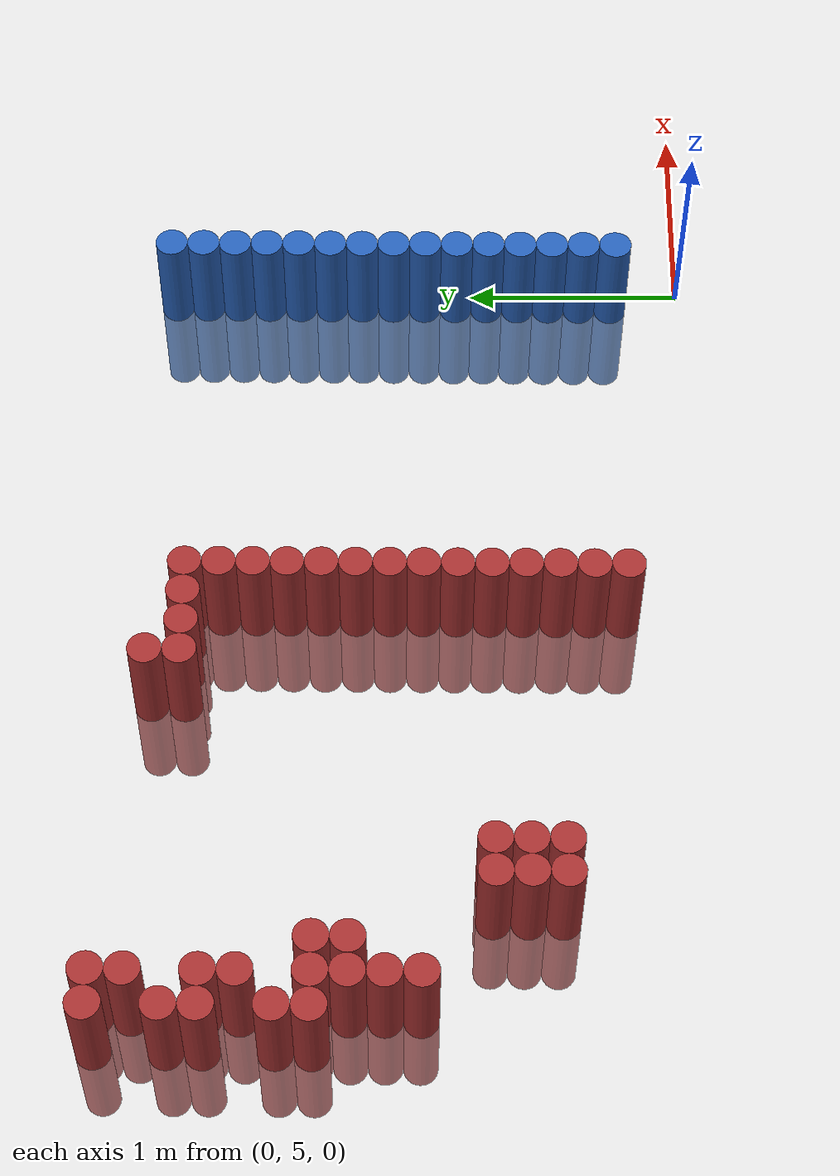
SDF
<sdf version="1.6">
 <world name="default">
  <model name="ground_plane">
   <static>1</static>
   <link name="link">
    <collision name="collision">
     <geometry><plane><normal>0 0 1</normal><size>100 100</size></plane></geometry>
     <surface><friction><ode><mu>100</mu><mu2>50</mu2></ode></friction></surface>
    </collision>
    <visual name="visual">
     <cast_shadows>0</cast_shadows>
     <geometry><plane><normal>0 0 1</normal><size>100 100</size></plane></geometry>
     <material>
      <script><uri>file://media/materials/scripts/gazebo.material</uri><name>Gazebo/Grey</name></script>
     </material>
    </visual>
   </link>
  </model>
  <model name="unit_cylinder_259">
   <static>1</static>
   <pose>-3.975000 6.675000 0.000000 0.000000 0.000000 0.000000</pose>
   <link name="link">
    <inertial>
     <mass>1</mass>
     <inertia><ixx>0.145833</ixx><ixy>0</ixy><ixz>0</ixz><iyy>0.145833</iyy><iyz>0</iyz><izz>0.125</izz></inertia>
    </inertial>
    <collision name="collision">
     <geometry><cylinder><radius>0.075000</radius><length>1</length></cylinder></geometry>
    </collision>
    <visual name="visual">
     <geometry><cylinder><radius>0.075000</radius><length>1</length></cylinder></geometry>
     <material>
      <ambient>0.648000 0.192000 0.192000 1</ambient>
      <diffuse>0.648000 0.192000 0.192000 1</diffuse>
     </material>
     <material>
      <script><name>Gazebo/Grey</name><uri>file://media/materials/scripts/gazebo.material</uri></script>
     </material>
    </visual>
   </link>
  </model>
  <model name="unit_cylinder_260">
   <static>1</static>
   <pose>-3.975000 6.825000 0.000000 0.000000 0.000000 0.000000</pose>
   <link name="link">
    <inertial>
     <mass>1</mass>
     <inertia><ixx>0.145833</ixx><ixy>0</ixy><ixz>0</ixz><iyy>0.145833</iyy><iyz>0</iyz><izz>0.125</izz></inertia>
    </inertial>
    <collision name="collision">
     <geometry><cylinder><radius>0.075000</radius><length>1</length></cylinder></geometry>
    </collision>
    <visual name="visual">
     <geometry><cylinder><radius>0.075000</radius><length>1</length></cylinder></geometry>
     <material>
      <ambient>0.648000 0.192000 0.192000 1</ambient>
      <diffuse>0.648000 0.192000 0.192000 1</diffuse>
     </material>
     <material>
      <script><name>Gazebo/Grey</name><uri>file://media/materials/scripts/gazebo.material</uri></script>
     </material>
    </visual>
   </link>
  </model>
  <model name="unit_cylinder_261">
   <static>1</static>
   <pose>-3.975000 7.125000 0.000000 0.000000 0.000000 0.000000</pose>
   <link name="link">
    <inertial>
     <mass>1</mass>
     <inertia><ixx>0.145833</ixx><ixy>0</ixy><ixz>0</ixz><iyy>0.145833</iyy><iyz>0</iyz><izz>0.125</izz></inertia>
    </inertial>
    <collision name="collision">
     <geometry><cylinder><radius>0.075000</radius><length>1</length></cylinder></geometry>
    </collision>
    <visual name="visual">
     <geometry><cylinder><radius>0.075000</radius><length>1</length></cylinder></geometry>
     <material>
      <ambient>0.648000 0.192000 0.192000 1</ambient>
      <diffuse>0.648000 0.192000 0.192000 1</diffuse>
     </material>
     <material>
      <script><name>Gazebo/Grey</name><uri>file://media/materials/scripts/gazebo.material</uri></script>
     </material>
    </visual>
   </link>
  </model>
  <model name="unit_cylinder_262">
   <static>1</static>
   <pose>-3.975000 7.275000 0.000000 0.000000 0.000000 0.000000</pose>
   <link name="link">
    <inertial>
     <mass>1</mass>
     <inertia><ixx>0.145833</ixx><ixy>0</ixy><ixz>0</ixz><iyy>0.145833</iyy><iyz>0</iyz><izz>0.125</izz></inertia>
    </inertial>
    <collision name="collision">
     <geometry><cylinder><radius>0.075000</radius><length>1</length></cylinder></geometry>
    </collision>
    <visual name="visual">
     <geometry><cylinder><radius>0.075000</radius><length>1</length></cylinder></geometry>
     <material>
      <ambient>0.648000 0.192000 0.192000 1</ambient>
      <diffuse>0.648000 0.192000 0.192000 1</diffuse>
     </material>
     <material>
      <script><name>Gazebo/Grey</name><uri>file://media/materials/scripts/gazebo.material</uri></script>
     </material>
    </visual>
   </link>
  </model>
  <model name="unit_cylinder_263">
   <static>1</static>
   <pose>-3.975000 7.575000 0.000000 0.000000 0.000000 0.000000</pose>
   <link name="link">
    <inertial>
     <mass>1</mass>
     <inertia><ixx>0.145833</ixx><ixy>0</ixy><ixz>0</ixz><iyy>0.145833</iyy><iyz>0</iyz><izz>0.125</izz></inertia>
    </inertial>
    <collision name="collision">
     <geometry><cylinder><radius>0.075000</radius><length>1</length></cylinder></geometry>
    </collision>
    <visual name="visual">
     <geometry><cylinder><radius>0.075000</radius><length>1</length></cylinder></geometry>
     <material>
      <ambient>0.648000 0.192000 0.192000 1</ambient>
      <diffuse>0.648000 0.192000 0.192000 1</diffuse>
     </material>
     <material>
      <script><name>Gazebo/Grey</name><uri>file://media/materials/scripts/gazebo.material</uri></script>
     </material>
    </visual>
   </link>
  </model>
  <model name="unit_cylinder_270">
   <static>1</static>
   <pose>-3.825000 6.225000 0.000000 0.000000 0.000000 0.000000</pose>
   <link name="link">
    <inertial>
     <mass>1</mass>
     <inertia><ixx>0.145833</ixx><ixy>0</ixy><ixz>0</ixz><iyy>0.145833</iyy><iyz>0</iyz><izz>0.125</izz></inertia>
    </inertial>
    <collision name="collision">
     <geometry><cylinder><radius>0.075000</radius><length>1</length></cylinder></geometry>
    </collision>
    <visual name="visual">
     <geometry><cylinder><radius>0.075000</radius><length>1</length></cylinder></geometry>
     <material>
      <ambient>0.648000 0.192000 0.192000 1</ambient>
      <diffuse>0.648000 0.192000 0.192000 1</diffuse>
     </material>
     <material>
      <script><name>Gazebo/Grey</name><uri>file://media/materials/scripts/gazebo.material</uri></script>
     </material>
    </visual>
   </link>
  </model>
  <model name="unit_cylinder_271">
   <static>1</static>
   <pose>-3.825000 6.375000 0.000000 0.000000 0.000000 0.000000</pose>
   <link name="link">
    <inertial>
     <mass>1</mass>
     <inertia><ixx>0.145833</ixx><ixy>0</ixy><ixz>0</ixz><iyy>0.145833</iyy><iyz>0</iyz><izz>0.125</izz></inertia>
    </inertial>
    <collision name="collision">
     <geometry><cylinder><radius>0.075000</radius><length>1</length></cylinder></geometry>
    </collision>
    <visual name="visual">
     <geometry><cylinder><radius>0.075000</radius><length>1</length></cylinder></geometry>
     <material>
      <ambient>0.648000 0.192000 0.192000 1</ambient>
      <diffuse>0.648000 0.192000 0.192000 1</diffuse>
     </material>
     <material>
      <script><name>Gazebo/Grey</name><uri>file://media/materials/scripts/gazebo.material</uri></script>
     </material>
    </visual>
   </link>
  </model>
  <model name="unit_cylinder_272">
   <static>1</static>
   <pose>-3.825000 6.525000 0.000000 0.000000 0.000000 0.000000</pose>
   <link name="link">
    <inertial>
     <mass>1</mass>
     <inertia><ixx>0.145833</ixx><ixy>0</ixy><ixz>0</ixz><iyy>0.145833</iyy><iyz>0</iyz><izz>0.125</izz></inertia>
    </inertial>
    <collision name="collision">
     <geometry><cylinder><radius>0.075000</radius><length>1</length></cylinder></geometry>
    </collision>
    <visual name="visual">
     <geometry><cylinder><radius>0.075000</radius><length>1</length></cylinder></geometry>
     <material>
      <ambient>0.648000 0.192000 0.192000 1</ambient>
      <diffuse>0.648000 0.192000 0.192000 1</diffuse>
     </material>
     <material>
      <script><name>Gazebo/Grey</name><uri>file://media/materials/scripts/gazebo.material</uri></script>
     </material>
    </visual>
   </link>
  </model>
  <model name="unit_cylinder_273">
   <static>1</static>
   <pose>-3.825000 6.675000 0.000000 0.000000 0.000000 0.000000</pose>
   <link name="link">
    <inertial>
     <mass>1</mass>
     <inertia><ixx>0.145833</ixx><ixy>0</ixy><ixz>0</ixz><iyy>0.145833</iyy><iyz>0</iyz><izz>0.125</izz></inertia>
    </inertial>
    <collision name="collision">
     <geometry><cylinder><radius>0.075000</radius><length>1</length></cylinder></geometry>
    </collision>
    <visual name="visual">
     <geometry><cylinder><radius>0.075000</radius><length>1</length></cylinder></geometry>
     <material>
      <ambient>0.648000 0.192000 0.192000 1</ambient>
      <diffuse>0.648000 0.192000 0.192000 1</diffuse>
     </material>
     <material>
      <script><name>Gazebo/Grey</name><uri>file://media/materials/scripts/gazebo.material</uri></script>
     </material>
    </visual>
   </link>
  </model>
  <model name="unit_cylinder_274">
   <static>1</static>
   <pose>-3.825000 6.975000 0.000000 0.000000 0.000000 0.000000</pose>
   <link name="link">
    <inertial>
     <mass>1</mass>
     <inertia><ixx>0.145833</ixx><ixy>0</ixy><ixz>0</ixz><iyy>0.145833</iyy><iyz>0</iyz><izz>0.125</izz></inertia>
    </inertial>
    <collision name="collision">
     <geometry><cylinder><radius>0.075000</radius><length>1</length></cylinder></geometry>
    </collision>
    <visual name="visual">
     <geometry><cylinder><radius>0.075000</radius><length>1</length></cylinder></geometry>
     <material>
      <ambient>0.648000 0.192000 0.192000 1</ambient>
      <diffuse>0.648000 0.192000 0.192000 1</diffuse>
     </material>
     <material>
      <script><name>Gazebo/Grey</name><uri>file://media/materials/scripts/gazebo.material</uri></script>
     </material>
    </visual>
   </link>
  </model>
  <model name="unit_cylinder_275">
   <static>1</static>
   <pose>-3.825000 7.125000 0.000000 0.000000 0.000000 0.000000</pose>
   <link name="link">
    <inertial>
     <mass>1</mass>
     <inertia><ixx>0.145833</ixx><ixy>0</ixy><ixz>0</ixz><iyy>0.145833</iyy><iyz>0</iyz><izz>0.125</izz></inertia>
    </inertial>
    <collision name="collision">
     <geometry><cylinder><radius>0.075000</radius><length>1</length></cylinder></geometry>
    </collision>
    <visual name="visual">
     <geometry><cylinder><radius>0.075000</radius><length>1</length></cylinder></geometry>
     <material>
      <ambient>0.648000 0.192000 0.192000 1</ambient>
      <diffuse>0.648000 0.192000 0.192000 1</diffuse>
     </material>
     <material>
      <script><name>Gazebo/Grey</name><uri>file://media/materials/scripts/gazebo.material</uri></script>
     </material>
    </visual>
   </link>
  </model>
  <model name="unit_cylinder_276">
   <static>1</static>
   <pose>-3.825000 7.425000 0.000000 0.000000 0.000000 0.000000</pose>
   <link name="link">
    <inertial>
     <mass>1</mass>
     <inertia><ixx>0.145833</ixx><ixy>0</ixy><ixz>0</ixz><iyy>0.145833</iyy><iyz>0</iyz><izz>0.125</izz></inertia>
    </inertial>
    <collision name="collision">
     <geometry><cylinder><radius>0.075000</radius><length>1</length></cylinder></geometry>
    </collision>
    <visual name="visual">
     <geometry><cylinder><radius>0.075000</radius><length>1</length></cylinder></geometry>
     <material>
      <ambient>0.648000 0.192000 0.192000 1</ambient>
      <diffuse>0.648000 0.192000 0.192000 1</diffuse>
     </material>
     <material>
      <script><name>Gazebo/Grey</name><uri>file://media/materials/scripts/gazebo.material</uri></script>
     </material>
    </visual>
   </link>
  </model>
  <model name="unit_cylinder_277">
   <static>1</static>
   <pose>-3.825000 7.575000 0.000000 0.000000 0.000000 0.000000</pose>
   <link name="link">
    <inertial>
     <mass>1</mass>
     <inertia><ixx>0.145833</ixx><ixy>0</ixy><ixz>0</ixz><iyy>0.145833</iyy><iyz>0</iyz><izz>0.125</izz></inertia>
    </inertial>
    <collision name="collision">
     <geometry><cylinder><radius>0.075000</radius><length>1</length></cylinder></geometry>
    </collision>
    <visual name="visual">
     <geometry><cylinder><radius>0.075000</radius><length>1</length></cylinder></geometry>
     <material>
      <ambient>0.648000 0.192000 0.192000 1</ambient>
      <diffuse>0.648000 0.192000 0.192000 1</diffuse>
     </material>
     <material>
      <script><name>Gazebo/Grey</name><uri>file://media/materials/scripts/gazebo.material</uri></script>
     </material>
    </visual>
   </link>
  </model>
  <model name="unit_cylinder_281">
   <static>1</static>
   <pose>-3.675000 6.525000 0.000000 0.000000 0.000000 0.000000</pose>
   <link name="link">
    <inertial>
     <mass>1</mass>
     <inertia><ixx>0.145833</ixx><ixy>0</ixy><ixz>0</ixz><iyy>0.145833</iyy><iyz>0</iyz><izz>0.125</izz></inertia>
    </inertial>
    <collision name="collision">
     <geometry><cylinder><radius>0.075000</radius><length>1</length></cylinder></geometry>
    </collision>
    <visual name="visual">
     <geometry><cylinder><radius>0.075000</radius><length>1</length></cylinder></geometry>
     <material>
      <ambient>0.648000 0.192000 0.192000 1</ambient>
      <diffuse>0.648000 0.192000 0.192000 1</diffuse>
     </material>
     <material>
      <script><name>Gazebo/Grey</name><uri>file://media/materials/scripts/gazebo.material</uri></script>
     </material>
    </visual>
   </link>
  </model>
  <model name="unit_cylinder_282">
   <static>1</static>
   <pose>-3.675000 6.675000 0.000000 0.000000 0.000000 0.000000</pose>
   <link name="link">
    <inertial>
     <mass>1</mass>
     <inertia><ixx>0.145833</ixx><ixy>0</ixy><ixz>0</ixz><iyy>0.145833</iyy><iyz>0</iyz><izz>0.125</izz></inertia>
    </inertial>
    <collision name="collision">
     <geometry><cylinder><radius>0.075000</radius><length>1</length></cylinder></geometry>
    </collision>
    <visual name="visual">
     <geometry><cylinder><radius>0.075000</radius><length>1</length></cylinder></geometry>
     <material>
      <ambient>0.648000 0.192000 0.192000 1</ambient>
      <diffuse>0.648000 0.192000 0.192000 1</diffuse>
     </material>
     <material>
      <script><name>Gazebo/Grey</name><uri>file://media/materials/scripts/gazebo.material</uri></script>
     </material>
    </visual>
   </link>
  </model>
  <model name="unit_cylinder_285">
   <static>1</static>
   <pose>-3.375000 5.625000 0.000000 0.000000 0.000000 0.000000</pose>
   <link name="link">
    <inertial>
     <mass>1</mass>
     <inertia><ixx>0.145833</ixx><ixy>0</ixy><ixz>0</ixz><iyy>0.145833</iyy><iyz>0</iyz><izz>0.125</izz></inertia>
    </inertial>
    <collision name="collision">
     <geometry><cylinder><radius>0.075000</radius><length>1</length></cylinder></geometry>
    </collision>
    <visual name="visual">
     <geometry><cylinder><radius>0.075000</radius><length>1</length></cylinder></geometry>
     <material>
      <ambient>0.648000 0.192000 0.192000 1</ambient>
      <diffuse>0.648000 0.192000 0.192000 1</diffuse>
     </material>
     <material>
      <script><name>Gazebo/Grey</name><uri>file://media/materials/scripts/gazebo.material</uri></script>
     </material>
    </visual>
   </link>
  </model>
  <model name="unit_cylinder_286">
   <static>1</static>
   <pose>-3.375000 5.775000 0.000000 0.000000 0.000000 0.000000</pose>
   <link name="link">
    <inertial>
     <mass>1</mass>
     <inertia><ixx>0.145833</ixx><ixy>0</ixy><ixz>0</ixz><iyy>0.145833</iyy><iyz>0</iyz><izz>0.125</izz></inertia>
    </inertial>
    <collision name="collision">
     <geometry><cylinder><radius>0.075000</radius><length>1</length></cylinder></geometry>
    </collision>
    <visual name="visual">
     <geometry><cylinder><radius>0.075000</radius><length>1</length></cylinder></geometry>
     <material>
      <ambient>0.648000 0.192000 0.192000 1</ambient>
      <diffuse>0.648000 0.192000 0.192000 1</diffuse>
     </material>
     <material>
      <script><name>Gazebo/Grey</name><uri>file://media/materials/scripts/gazebo.material</uri></script>
     </material>
    </visual>
   </link>
  </model>
  <model name="unit_cylinder_287">
   <static>1</static>
   <pose>-3.375000 5.925000 0.000000 0.000000 0.000000 0.000000</pose>
   <link name="link">
    <inertial>
     <mass>1</mass>
     <inertia><ixx>0.145833</ixx><ixy>0</ixy><ixz>0</ixz><iyy>0.145833</iyy><iyz>0</iyz><izz>0.125</izz></inertia>
    </inertial>
    <collision name="collision">
     <geometry><cylinder><radius>0.075000</radius><length>1</length></cylinder></geometry>
    </collision>
    <visual name="visual">
     <geometry><cylinder><radius>0.075000</radius><length>1</length></cylinder></geometry>
     <material>
      <ambient>0.648000 0.192000 0.192000 1</ambient>
      <diffuse>0.648000 0.192000 0.192000 1</diffuse>
     </material>
     <material>
      <script><name>Gazebo/Grey</name><uri>file://media/materials/scripts/gazebo.material</uri></script>
     </material>
    </visual>
   </link>
  </model>
  <model name="unit_cylinder_288">
   <static>1</static>
   <pose>-3.225000 5.625000 0.000000 0.000000 0.000000 0.000000</pose>
   <link name="link">
    <inertial>
     <mass>1</mass>
     <inertia><ixx>0.145833</ixx><ixy>0</ixy><ixz>0</ixz><iyy>0.145833</iyy><iyz>0</iyz><izz>0.125</izz></inertia>
    </inertial>
    <collision name="collision">
     <geometry><cylinder><radius>0.075000</radius><length>1</length></cylinder></geometry>
    </collision>
    <visual name="visual">
     <geometry><cylinder><radius>0.075000</radius><length>1</length></cylinder></geometry>
     <material>
      <ambient>0.648000 0.192000 0.192000 1</ambient>
      <diffuse>0.648000 0.192000 0.192000 1</diffuse>
     </material>
     <material>
      <script><name>Gazebo/Grey</name><uri>file://media/materials/scripts/gazebo.material</uri></script>
     </material>
    </visual>
   </link>
  </model>
  <model name="unit_cylinder_289">
   <static>1</static>
   <pose>-3.225000 5.775000 0.000000 0.000000 0.000000 0.000000</pose>
   <link name="link">
    <inertial>
     <mass>1</mass>
     <inertia><ixx>0.145833</ixx><ixy>0</ixy><ixz>0</ixz><iyy>0.145833</iyy><iyz>0</iyz><izz>0.125</izz></inertia>
    </inertial>
    <collision name="collision">
     <geometry><cylinder><radius>0.075000</radius><length>1</length></cylinder></geometry>
    </collision>
    <visual name="visual">
     <geometry><cylinder><radius>0.075000</radius><length>1</length></cylinder></geometry>
     <material>
      <ambient>0.648000 0.192000 0.192000 1</ambient>
      <diffuse>0.648000 0.192000 0.192000 1</diffuse>
     </material>
     <material>
      <script><name>Gazebo/Grey</name><uri>file://media/materials/scripts/gazebo.material</uri></script>
     </material>
    </visual>
   </link>
  </model>
  <model name="unit_cylinder_290">
   <static>1</static>
   <pose>-3.225000 5.925000 0.000000 0.000000 0.000000 0.000000</pose>
   <link name="link">
    <inertial>
     <mass>1</mass>
     <inertia><ixx>0.145833</ixx><ixy>0</ixy><ixz>0</ixz><iyy>0.145833</iyy><iyz>0</iyz><izz>0.125</izz></inertia>
    </inertial>
    <collision name="collision">
     <geometry><cylinder><radius>0.075000</radius><length>1</length></cylinder></geometry>
    </collision>
    <visual name="visual">
     <geometry><cylinder><radius>0.075000</radius><length>1</length></cylinder></geometry>
     <material>
      <ambient>0.648000 0.192000 0.192000 1</ambient>
      <diffuse>0.648000 0.192000 0.192000 1</diffuse>
     </material>
     <material>
      <script><name>Gazebo/Grey</name><uri>file://media/materials/scripts/gazebo.material</uri></script>
     </material>
    </visual>
   </link>
  </model>
  <model name="unit_cylinder_295">
   <static>1</static>
   <pose>-2.325000 7.275000 0.000000 0.000000 0.000000 0.000000</pose>
   <link name="link">
    <inertial>
     <mass>1</mass>
     <inertia><ixx>0.145833</ixx><ixy>0</ixy><ixz>0</ixz><iyy>0.145833</iyy><iyz>0</iyz><izz>0.125</izz></inertia>
    </inertial>
    <collision name="collision">
     <geometry><cylinder><radius>0.075000</radius><length>1</length></cylinder></geometry>
    </collision>
    <visual name="visual">
     <geometry><cylinder><radius>0.075000</radius><length>1</length></cylinder></geometry>
     <material>
      <ambient>0.648000 0.192000 0.192000 1</ambient>
      <diffuse>0.648000 0.192000 0.192000 1</diffuse>
     </material>
     <material>
      <script><name>Gazebo/Grey</name><uri>file://media/materials/scripts/gazebo.material</uri></script>
     </material>
    </visual>
   </link>
  </model>
  <model name="unit_cylinder_296">
   <static>1</static>
   <pose>-2.325000 7.425000 0.000000 0.000000 0.000000 0.000000</pose>
   <link name="link">
    <inertial>
     <mass>1</mass>
     <inertia><ixx>0.145833</ixx><ixy>0</ixy><ixz>0</ixz><iyy>0.145833</iyy><iyz>0</iyz><izz>0.125</izz></inertia>
    </inertial>
    <collision name="collision">
     <geometry><cylinder><radius>0.075000</radius><length>1</length></cylinder></geometry>
    </collision>
    <visual name="visual">
     <geometry><cylinder><radius>0.075000</radius><length>1</length></cylinder></geometry>
     <material>
      <ambient>0.648000 0.192000 0.192000 1</ambient>
      <diffuse>0.648000 0.192000 0.192000 1</diffuse>
     </material>
     <material>
      <script><name>Gazebo/Grey</name><uri>file://media/materials/scripts/gazebo.material</uri></script>
     </material>
    </visual>
   </link>
  </model>
  <model name="unit_cylinder_309">
   <static>1</static>
   <pose>-2.175000 7.275000 0.000000 0.000000 0.000000 0.000000</pose>
   <link name="link">
    <inertial>
     <mass>1</mass>
     <inertia><ixx>0.145833</ixx><ixy>0</ixy><ixz>0</ixz><iyy>0.145833</iyy><iyz>0</iyz><izz>0.125</izz></inertia>
    </inertial>
    <collision name="collision">
     <geometry><cylinder><radius>0.075000</radius><length>1</length></cylinder></geometry>
    </collision>
    <visual name="visual">
     <geometry><cylinder><radius>0.075000</radius><length>1</length></cylinder></geometry>
     <material>
      <ambient>0.648000 0.192000 0.192000 1</ambient>
      <diffuse>0.648000 0.192000 0.192000 1</diffuse>
     </material>
     <material>
      <script><name>Gazebo/Grey</name><uri>file://media/materials/scripts/gazebo.material</uri></script>
     </material>
    </visual>
   </link>
  </model>
  <model name="unit_cylinder_311">
   <static>1</static>
   <pose>-2.025000 7.275000 0.000000 0.000000 0.000000 0.000000</pose>
   <link name="link">
    <inertial>
     <mass>1</mass>
     <inertia><ixx>0.145833</ixx><ixy>0</ixy><ixz>0</ixz><iyy>0.145833</iyy><iyz>0</iyz><izz>0.125</izz></inertia>
    </inertial>
    <collision name="collision">
     <geometry><cylinder><radius>0.075000</radius><length>1</length></cylinder></geometry>
    </collision>
    <visual name="visual">
     <geometry><cylinder><radius>0.075000</radius><length>1</length></cylinder></geometry>
     <material>
      <ambient>0.648000 0.192000 0.192000 1</ambient>
      <diffuse>0.648000 0.192000 0.192000 1</diffuse>
     </material>
     <material>
      <script><name>Gazebo/Grey</name><uri>file://media/materials/scripts/gazebo.material</uri></script>
     </material>
    </visual>
   </link>
  </model>
  <model name="unit_cylinder_314">
   <static>1</static>
   <pose>-1.875000 5.325000 0.000000 0.000000 0.000000 0.000000</pose>
   <link name="link">
    <inertial>
     <mass>1</mass>
     <inertia><ixx>0.145833</ixx><ixy>0</ixy><ixz>0</ixz><iyy>0.145833</iyy><iyz>0</iyz><izz>0.125</izz></inertia>
    </inertial>
    <collision name="collision">
     <geometry><cylinder><radius>0.075000</radius><length>1</length></cylinder></geometry>
    </collision>
    <visual name="visual">
     <geometry><cylinder><radius>0.075000</radius><length>1</length></cylinder></geometry>
     <material>
      <ambient>0.648000 0.192000 0.192000 1</ambient>
      <diffuse>0.648000 0.192000 0.192000 1</diffuse>
     </material>
     <material>
      <script><name>Gazebo/Grey</name><uri>file://media/materials/scripts/gazebo.material</uri></script>
     </material>
    </visual>
   </link>
  </model>
  <model name="unit_cylinder_315">
   <static>1</static>
   <pose>-1.875000 5.475000 0.000000 0.000000 0.000000 0.000000</pose>
   <link name="link">
    <inertial>
     <mass>1</mass>
     <inertia><ixx>0.145833</ixx><ixy>0</ixy><ixz>0</ixz><iyy>0.145833</iyy><iyz>0</iyz><izz>0.125</izz></inertia>
    </inertial>
    <collision name="collision">
     <geometry><cylinder><radius>0.075000</radius><length>1</length></cylinder></geometry>
    </collision>
    <visual name="visual">
     <geometry><cylinder><radius>0.075000</radius><length>1</length></cylinder></geometry>
     <material>
      <ambient>0.648000 0.192000 0.192000 1</ambient>
      <diffuse>0.648000 0.192000 0.192000 1</diffuse>
     </material>
     <material>
      <script><name>Gazebo/Grey</name><uri>file://media/materials/scripts/gazebo.material</uri></script>
     </material>
    </visual>
   </link>
  </model>
  <model name="unit_cylinder_316">
   <static>1</static>
   <pose>-1.875000 5.625000 0.000000 0.000000 0.000000 0.000000</pose>
   <link name="link">
    <inertial>
     <mass>1</mass>
     <inertia><ixx>0.145833</ixx><ixy>0</ixy><ixz>0</ixz><iyy>0.145833</iyy><iyz>0</iyz><izz>0.125</izz></inertia>
    </inertial>
    <collision name="collision">
     <geometry><cylinder><radius>0.075000</radius><length>1</length></cylinder></geometry>
    </collision>
    <visual name="visual">
     <geometry><cylinder><radius>0.075000</radius><length>1</length></cylinder></geometry>
     <material>
      <ambient>0.648000 0.192000 0.192000 1</ambient>
      <diffuse>0.648000 0.192000 0.192000 1</diffuse>
     </material>
     <material>
      <script><name>Gazebo/Grey</name><uri>file://media/materials/scripts/gazebo.material</uri></script>
     </material>
    </visual>
   </link>
  </model>
  <model name="unit_cylinder_317">
   <static>1</static>
   <pose>-1.875000 5.775000 0.000000 0.000000 0.000000 0.000000</pose>
   <link name="link">
    <inertial>
     <mass>1</mass>
     <inertia><ixx>0.145833</ixx><ixy>0</ixy><ixz>0</ixz><iyy>0.145833</iyy><iyz>0</iyz><izz>0.125</izz></inertia>
    </inertial>
    <collision name="collision">
     <geometry><cylinder><radius>0.075000</radius><length>1</length></cylinder></geometry>
    </collision>
    <visual name="visual">
     <geometry><cylinder><radius>0.075000</radius><length>1</length></cylinder></geometry>
     <material>
      <ambient>0.648000 0.192000 0.192000 1</ambient>
      <diffuse>0.648000 0.192000 0.192000 1</diffuse>
     </material>
     <material>
      <script><name>Gazebo/Grey</name><uri>file://media/materials/scripts/gazebo.material</uri></script>
     </material>
    </visual>
   </link>
  </model>
  <model name="unit_cylinder_318">
   <static>1</static>
   <pose>-1.875000 5.925000 0.000000 0.000000 0.000000 0.000000</pose>
   <link name="link">
    <inertial>
     <mass>1</mass>
     <inertia><ixx>0.145833</ixx><ixy>0</ixy><ixz>0</ixz><iyy>0.145833</iyy><iyz>0</iyz><izz>0.125</izz></inertia>
    </inertial>
    <collision name="collision">
     <geometry><cylinder><radius>0.075000</radius><length>1</length></cylinder></geometry>
    </collision>
    <visual name="visual">
     <geometry><cylinder><radius>0.075000</radius><length>1</length></cylinder></geometry>
     <material>
      <ambient>0.648000 0.192000 0.192000 1</ambient>
      <diffuse>0.648000 0.192000 0.192000 1</diffuse>
     </material>
     <material>
      <script><name>Gazebo/Grey</name><uri>file://media/materials/scripts/gazebo.material</uri></script>
     </material>
    </visual>
   </link>
  </model>
  <model name="unit_cylinder_319">
   <static>1</static>
   <pose>-1.875000 6.075000 0.000000 0.000000 0.000000 0.000000</pose>
   <link name="link">
    <inertial>
     <mass>1</mass>
     <inertia><ixx>0.145833</ixx><ixy>0</ixy><ixz>0</ixz><iyy>0.145833</iyy><iyz>0</iyz><izz>0.125</izz></inertia>
    </inertial>
    <collision name="collision">
     <geometry><cylinder><radius>0.075000</radius><length>1</length></cylinder></geometry>
    </collision>
    <visual name="visual">
     <geometry><cylinder><radius>0.075000</radius><length>1</length></cylinder></geometry>
     <material>
      <ambient>0.648000 0.192000 0.192000 1</ambient>
      <diffuse>0.648000 0.192000 0.192000 1</diffuse>
     </material>
     <material>
      <script><name>Gazebo/Grey</name><uri>file://media/materials/scripts/gazebo.material</uri></script>
     </material>
    </visual>
   </link>
  </model>
  <model name="unit_cylinder_320">
   <static>1</static>
   <pose>-1.875000 6.225000 0.000000 0.000000 0.000000 0.000000</pose>
   <link name="link">
    <inertial>
     <mass>1</mass>
     <inertia><ixx>0.145833</ixx><ixy>0</ixy><ixz>0</ixz><iyy>0.145833</iyy><iyz>0</iyz><izz>0.125</izz></inertia>
    </inertial>
    <collision name="collision">
     <geometry><cylinder><radius>0.075000</radius><length>1</length></cylinder></geometry>
    </collision>
    <visual name="visual">
     <geometry><cylinder><radius>0.075000</radius><length>1</length></cylinder></geometry>
     <material>
      <ambient>0.648000 0.192000 0.192000 1</ambient>
      <diffuse>0.648000 0.192000 0.192000 1</diffuse>
     </material>
     <material>
      <script><name>Gazebo/Grey</name><uri>file://media/materials/scripts/gazebo.material</uri></script>
     </material>
    </visual>
   </link>
  </model>
  <model name="unit_cylinder_321">
   <static>1</static>
   <pose>-1.875000 6.375000 0.000000 0.000000 0.000000 0.000000</pose>
   <link name="link">
    <inertial>
     <mass>1</mass>
     <inertia><ixx>0.145833</ixx><ixy>0</ixy><ixz>0</ixz><iyy>0.145833</iyy><iyz>0</iyz><izz>0.125</izz></inertia>
    </inertial>
    <collision name="collision">
     <geometry><cylinder><radius>0.075000</radius><length>1</length></cylinder></geometry>
    </collision>
    <visual name="visual">
     <geometry><cylinder><radius>0.075000</radius><length>1</length></cylinder></geometry>
     <material>
      <ambient>0.648000 0.192000 0.192000 1</ambient>
      <diffuse>0.648000 0.192000 0.192000 1</diffuse>
     </material>
     <material>
      <script><name>Gazebo/Grey</name><uri>file://media/materials/scripts/gazebo.material</uri></script>
     </material>
    </visual>
   </link>
  </model>
  <model name="unit_cylinder_322">
   <static>1</static>
   <pose>-1.875000 6.525000 0.000000 0.000000 0.000000 0.000000</pose>
   <link name="link">
    <inertial>
     <mass>1</mass>
     <inertia><ixx>0.145833</ixx><ixy>0</ixy><ixz>0</ixz><iyy>0.145833</iyy><iyz>0</iyz><izz>0.125</izz></inertia>
    </inertial>
    <collision name="collision">
     <geometry><cylinder><radius>0.075000</radius><length>1</length></cylinder></geometry>
    </collision>
    <visual name="visual">
     <geometry><cylinder><radius>0.075000</radius><length>1</length></cylinder></geometry>
     <material>
      <ambient>0.648000 0.192000 0.192000 1</ambient>
      <diffuse>0.648000 0.192000 0.192000 1</diffuse>
     </material>
     <material>
      <script><name>Gazebo/Grey</name><uri>file://media/materials/scripts/gazebo.material</uri></script>
     </material>
    </visual>
   </link>
  </model>
  <model name="unit_cylinder_323">
   <static>1</static>
   <pose>-1.875000 6.675000 0.000000 0.000000 0.000000 0.000000</pose>
   <link name="link">
    <inertial>
     <mass>1</mass>
     <inertia><ixx>0.145833</ixx><ixy>0</ixy><ixz>0</ixz><iyy>0.145833</iyy><iyz>0</iyz><izz>0.125</izz></inertia>
    </inertial>
    <collision name="collision">
     <geometry><cylinder><radius>0.075000</radius><length>1</length></cylinder></geometry>
    </collision>
    <visual name="visual">
     <geometry><cylinder><radius>0.075000</radius><length>1</length></cylinder></geometry>
     <material>
      <ambient>0.648000 0.192000 0.192000 1</ambient>
      <diffuse>0.648000 0.192000 0.192000 1</diffuse>
     </material>
     <material>
      <script><name>Gazebo/Grey</name><uri>file://media/materials/scripts/gazebo.material</uri></script>
     </material>
    </visual>
   </link>
  </model>
  <model name="unit_cylinder_324">
   <static>1</static>
   <pose>-1.875000 6.825000 0.000000 0.000000 0.000000 0.000000</pose>
   <link name="link">
    <inertial>
     <mass>1</mass>
     <inertia><ixx>0.145833</ixx><ixy>0</ixy><ixz>0</ixz><iyy>0.145833</iyy><iyz>0</iyz><izz>0.125</izz></inertia>
    </inertial>
    <collision name="collision">
     <geometry><cylinder><radius>0.075000</radius><length>1</length></cylinder></geometry>
    </collision>
    <visual name="visual">
     <geometry><cylinder><radius>0.075000</radius><length>1</length></cylinder></geometry>
     <material>
      <ambient>0.648000 0.192000 0.192000 1</ambient>
      <diffuse>0.648000 0.192000 0.192000 1</diffuse>
     </material>
     <material>
      <script><name>Gazebo/Grey</name><uri>file://media/materials/scripts/gazebo.material</uri></script>
     </material>
    </visual>
   </link>
  </model>
  <model name="unit_cylinder_325">
   <static>1</static>
   <pose>-1.875000 6.975000 0.000000 0.000000 0.000000 0.000000</pose>
   <link name="link">
    <inertial>
     <mass>1</mass>
     <inertia><ixx>0.145833</ixx><ixy>0</ixy><ixz>0</ixz><iyy>0.145833</iyy><iyz>0</iyz><izz>0.125</izz></inertia>
    </inertial>
    <collision name="collision">
     <geometry><cylinder><radius>0.075000</radius><length>1</length></cylinder></geometry>
    </collision>
    <visual name="visual">
     <geometry><cylinder><radius>0.075000</radius><length>1</length></cylinder></geometry>
     <material>
      <ambient>0.648000 0.192000 0.192000 1</ambient>
      <diffuse>0.648000 0.192000 0.192000 1</diffuse>
     </material>
     <material>
      <script><name>Gazebo/Grey</name><uri>file://media/materials/scripts/gazebo.material</uri></script>
     </material>
    </visual>
   </link>
  </model>
  <model name="unit_cylinder_326">
   <static>1</static>
   <pose>-1.875000 7.125000 0.000000 0.000000 0.000000 0.000000</pose>
   <link name="link">
    <inertial>
     <mass>1</mass>
     <inertia><ixx>0.145833</ixx><ixy>0</ixy><ixz>0</ixz><iyy>0.145833</iyy><iyz>0</iyz><izz>0.125</izz></inertia>
    </inertial>
    <collision name="collision">
     <geometry><cylinder><radius>0.075000</radius><length>1</length></cylinder></geometry>
    </collision>
    <visual name="visual">
     <geometry><cylinder><radius>0.075000</radius><length>1</length></cylinder></geometry>
     <material>
      <ambient>0.648000 0.192000 0.192000 1</ambient>
      <diffuse>0.648000 0.192000 0.192000 1</diffuse>
     </material>
     <material>
      <script><name>Gazebo/Grey</name><uri>file://media/materials/scripts/gazebo.material</uri></script>
     </material>
    </visual>
   </link>
  </model>
  <model name="unit_cylinder_327">
   <static>1</static>
   <pose>-1.875000 7.275000 0.000000 0.000000 0.000000 0.000000</pose>
   <link name="link">
    <inertial>
     <mass>1</mass>
     <inertia><ixx>0.145833</ixx><ixy>0</ixy><ixz>0</ixz><iyy>0.145833</iyy><iyz>0</iyz><izz>0.125</izz></inertia>
    </inertial>
    <collision name="collision">
     <geometry><cylinder><radius>0.075000</radius><length>1</length></cylinder></geometry>
    </collision>
    <visual name="visual">
     <geometry><cylinder><radius>0.075000</radius><length>1</length></cylinder></geometry>
     <material>
      <ambient>0.648000 0.192000 0.192000 1</ambient>
      <diffuse>0.648000 0.192000 0.192000 1</diffuse>
     </material>
     <material>
      <script><name>Gazebo/Grey</name><uri>file://media/materials/scripts/gazebo.material</uri></script>
     </material>
    </visual>
   </link>
  </model>
  <model name="unit_cylinder_352">
   <static>1</static>
   <pose>-0.075000 5.325000 0.000000 0.000000 0.000000 0.000000</pose>
   <link name="link">
    <inertial>
     <mass>1</mass>
     <inertia><ixx>0.145833</ixx><ixy>0</ixy><ixz>0</ixz><iyy>0.145833</iyy><iyz>0</iyz><izz>0.125</izz></inertia>
    </inertial>
    <collision name="collision">
     <geometry><cylinder><radius>0.075000</radius><length>1</length></cylinder></geometry>
    </collision>
    <visual name="visual">
     <geometry><cylinder><radius>0.075000</radius><length>1</length></cylinder></geometry>
     <material>
      <ambient>0.152000 0.379000 0.720000 1</ambient>
      <diffuse>0.152000 0.379000 0.720000 1</diffuse>
     </material>
     <material>
      <script><name>Gazebo/Grey</name><uri>file://media/materials/scripts/gazebo.material</uri></script>
     </material>
    </visual>
   </link>
  </model>
  <model name="unit_cylinder_353">
   <static>1</static>
   <pose>-0.075000 5.475000 0.000000 0.000000 0.000000 0.000000</pose>
   <link name="link">
    <inertial>
     <mass>1</mass>
     <inertia><ixx>0.145833</ixx><ixy>0</ixy><ixz>0</ixz><iyy>0.145833</iyy><iyz>0</iyz><izz>0.125</izz></inertia>
    </inertial>
    <collision name="collision">
     <geometry><cylinder><radius>0.075000</radius><length>1</length></cylinder></geometry>
    </collision>
    <visual name="visual">
     <geometry><cylinder><radius>0.075000</radius><length>1</length></cylinder></geometry>
     <material>
      <ambient>0.152000 0.379000 0.720000 1</ambient>
      <diffuse>0.152000 0.379000 0.720000 1</diffuse>
     </material>
     <material>
      <script><name>Gazebo/Grey</name><uri>file://media/materials/scripts/gazebo.material</uri></script>
     </material>
    </visual>
   </link>
  </model>
  <model name="unit_cylinder_354">
   <static>1</static>
   <pose>-0.075000 5.625000 0.000000 0.000000 0.000000 0.000000</pose>
   <link name="link">
    <inertial>
     <mass>1</mass>
     <inertia><ixx>0.145833</ixx><ixy>0</ixy><ixz>0</ixz><iyy>0.145833</iyy><iyz>0</iyz><izz>0.125</izz></inertia>
    </inertial>
    <collision name="collision">
     <geometry><cylinder><radius>0.075000</radius><length>1</length></cylinder></geometry>
    </collision>
    <visual name="visual">
     <geometry><cylinder><radius>0.075000</radius><length>1</length></cylinder></geometry>
     <material>
      <ambient>0.152000 0.379000 0.720000 1</ambient>
      <diffuse>0.152000 0.379000 0.720000 1</diffuse>
     </material>
     <material>
      <script><name>Gazebo/Grey</name><uri>file://media/materials/scripts/gazebo.material</uri></script>
     </material>
    </visual>
   </link>
  </model>
  <model name="unit_cylinder_355">
   <static>1</static>
   <pose>-0.075000 5.775000 0.000000 0.000000 0.000000 0.000000</pose>
   <link name="link">
    <inertial>
     <mass>1</mass>
     <inertia><ixx>0.145833</ixx><ixy>0</ixy><ixz>0</ixz><iyy>0.145833</iyy><iyz>0</iyz><izz>0.125</izz></inertia>
    </inertial>
    <collision name="collision">
     <geometry><cylinder><radius>0.075000</radius><length>1</length></cylinder></geometry>
    </collision>
    <visual name="visual">
     <geometry><cylinder><radius>0.075000</radius><length>1</length></cylinder></geometry>
     <material>
      <ambient>0.152000 0.379000 0.720000 1</ambient>
      <diffuse>0.152000 0.379000 0.720000 1</diffuse>
     </material>
     <material>
      <script><name>Gazebo/Grey</name><uri>file://media/materials/scripts/gazebo.material</uri></script>
     </material>
    </visual>
   </link>
  </model>
  <model name="unit_cylinder_356">
   <static>1</static>
   <pose>-0.075000 5.925000 0.000000 0.000000 0.000000 0.000000</pose>
   <link name="link">
    <inertial>
     <mass>1</mass>
     <inertia><ixx>0.145833</ixx><ixy>0</ixy><ixz>0</ixz><iyy>0.145833</iyy><iyz>0</iyz><izz>0.125</izz></inertia>
    </inertial>
    <collision name="collision">
     <geometry><cylinder><radius>0.075000</radius><length>1</length></cylinder></geometry>
    </collision>
    <visual name="visual">
     <geometry><cylinder><radius>0.075000</radius><length>1</length></cylinder></geometry>
     <material>
      <ambient>0.152000 0.379000 0.720000 1</ambient>
      <diffuse>0.152000 0.379000 0.720000 1</diffuse>
     </material>
     <material>
      <script><name>Gazebo/Grey</name><uri>file://media/materials/scripts/gazebo.material</uri></script>
     </material>
    </visual>
   </link>
  </model>
  <model name="unit_cylinder_357">
   <static>1</static>
   <pose>-0.075000 6.075000 0.000000 0.000000 0.000000 0.000000</pose>
   <link name="link">
    <inertial>
     <mass>1</mass>
     <inertia><ixx>0.145833</ixx><ixy>0</ixy><ixz>0</ixz><iyy>0.145833</iyy><iyz>0</iyz><izz>0.125</izz></inertia>
    </inertial>
    <collision name="collision">
     <geometry><cylinder><radius>0.075000</radius><length>1</length></cylinder></geometry>
    </collision>
    <visual name="visual">
     <geometry><cylinder><radius>0.075000</radius><length>1</length></cylinder></geometry>
     <material>
      <ambient>0.152000 0.379000 0.720000 1</ambient>
      <diffuse>0.152000 0.379000 0.720000 1</diffuse>
     </material>
     <material>
      <script><name>Gazebo/Grey</name><uri>file://media/materials/scripts/gazebo.material</uri></script>
     </material>
    </visual>
   </link>
  </model>
  <model name="unit_cylinder_358">
   <static>1</static>
   <pose>-0.075000 6.225000 0.000000 0.000000 0.000000 0.000000</pose>
   <link name="link">
    <inertial>
     <mass>1</mass>
     <inertia><ixx>0.145833</ixx><ixy>0</ixy><ixz>0</ixz><iyy>0.145833</iyy><iyz>0</iyz><izz>0.125</izz></inertia>
    </inertial>
    <collision name="collision">
     <geometry><cylinder><radius>0.075000</radius><length>1</length></cylinder></geometry>
    </collision>
    <visual name="visual">
     <geometry><cylinder><radius>0.075000</radius><length>1</length></cylinder></geometry>
     <material>
      <ambient>0.152000 0.379000 0.720000 1</ambient>
      <diffuse>0.152000 0.379000 0.720000 1</diffuse>
     </material>
     <material>
      <script><name>Gazebo/Grey</name><uri>file://media/materials/scripts/gazebo.material</uri></script>
     </material>
    </visual>
   </link>
  </model>
  <model name="unit_cylinder_359">
   <static>1</static>
   <pose>-0.075000 6.375000 0.000000 0.000000 0.000000 0.000000</pose>
   <link name="link">
    <inertial>
     <mass>1</mass>
     <inertia><ixx>0.145833</ixx><ixy>0</ixy><ixz>0</ixz><iyy>0.145833</iyy><iyz>0</iyz><izz>0.125</izz></inertia>
    </inertial>
    <collision name="collision">
     <geometry><cylinder><radius>0.075000</radius><length>1</length></cylinder></geometry>
    </collision>
    <visual name="visual">
     <geometry><cylinder><radius>0.075000</radius><length>1</length></cylinder></geometry>
     <material>
      <ambient>0.152000 0.379000 0.720000 1</ambient>
      <diffuse>0.152000 0.379000 0.720000 1</diffuse>
     </material>
     <material>
      <script><name>Gazebo/Grey</name><uri>file://media/materials/scripts/gazebo.material</uri></script>
     </material>
    </visual>
   </link>
  </model>
  <model name="unit_cylinder_360">
   <static>1</static>
   <pose>-0.075000 6.525000 0.000000 0.000000 0.000000 0.000000</pose>
   <link name="link">
    <inertial>
     <mass>1</mass>
     <inertia><ixx>0.145833</ixx><ixy>0</ixy><ixz>0</ixz><iyy>0.145833</iyy><iyz>0</iyz><izz>0.125</izz></inertia>
    </inertial>
    <collision name="collision">
     <geometry><cylinder><radius>0.075000</radius><length>1</length></cylinder></geometry>
    </collision>
    <visual name="visual">
     <geometry><cylinder><radius>0.075000</radius><length>1</length></cylinder></geometry>
     <material>
      <ambient>0.152000 0.379000 0.720000 1</ambient>
      <diffuse>0.152000 0.379000 0.720000 1</diffuse>
     </material>
     <material>
      <script><name>Gazebo/Grey</name><uri>file://media/materials/scripts/gazebo.material</uri></script>
     </material>
    </visual>
   </link>
  </model>
  <model name="unit_cylinder_361">
   <static>1</static>
   <pose>-0.075000 6.675000 0.000000 0.000000 0.000000 0.000000</pose>
   <link name="link">
    <inertial>
     <mass>1</mass>
     <inertia><ixx>0.145833</ixx><ixy>0</ixy><ixz>0</ixz><iyy>0.145833</iyy><iyz>0</iyz><izz>0.125</izz></inertia>
    </inertial>
    <collision name="collision">
     <geometry><cylinder><radius>0.075000</radius><length>1</length></cylinder></geometry>
    </collision>
    <visual name="visual">
     <geometry><cylinder><radius>0.075000</radius><length>1</length></cylinder></geometry>
     <material>
      <ambient>0.152000 0.379000 0.720000 1</ambient>
      <diffuse>0.152000 0.379000 0.720000 1</diffuse>
     </material>
     <material>
      <script><name>Gazebo/Grey</name><uri>file://media/materials/scripts/gazebo.material</uri></script>
     </material>
    </visual>
   </link>
  </model>
  <model name="unit_cylinder_362">
   <static>1</static>
   <pose>-0.075000 6.825000 0.000000 0.000000 0.000000 0.000000</pose>
   <link name="link">
    <inertial>
     <mass>1</mass>
     <inertia><ixx>0.145833</ixx><ixy>0</ixy><ixz>0</ixz><iyy>0.145833</iyy><iyz>0</iyz><izz>0.125</izz></inertia>
    </inertial>
    <collision name="collision">
     <geometry><cylinder><radius>0.075000</radius><length>1</length></cylinder></geometry>
    </collision>
    <visual name="visual">
     <geometry><cylinder><radius>0.075000</radius><length>1</length></cylinder></geometry>
     <material>
      <ambient>0.152000 0.379000 0.720000 1</ambient>
      <diffuse>0.152000 0.379000 0.720000 1</diffuse>
     </material>
     <material>
      <script><name>Gazebo/Grey</name><uri>file://media/materials/scripts/gazebo.material</uri></script>
     </material>
    </visual>
   </link>
  </model>
  <model name="unit_cylinder_363">
   <static>1</static>
   <pose>-0.075000 6.975000 0.000000 0.000000 0.000000 0.000000</pose>
   <link name="link">
    <inertial>
     <mass>1</mass>
     <inertia><ixx>0.145833</ixx><ixy>0</ixy><ixz>0</ixz><iyy>0.145833</iyy><iyz>0</iyz><izz>0.125</izz></inertia>
    </inertial>
    <collision name="collision">
     <geometry><cylinder><radius>0.075000</radius><length>1</length></cylinder></geometry>
    </collision>
    <visual name="visual">
     <geometry><cylinder><radius>0.075000</radius><length>1</length></cylinder></geometry>
     <material>
      <ambient>0.152000 0.379000 0.720000 1</ambient>
      <diffuse>0.152000 0.379000 0.720000 1</diffuse>
     </material>
     <material>
      <script><name>Gazebo/Grey</name><uri>file://media/materials/scripts/gazebo.material</uri></script>
     </material>
    </visual>
   </link>
  </model>
  <model name="unit_cylinder_364">
   <static>1</static>
   <pose>-0.075000 7.125000 0.000000 0.000000 0.000000 0.000000</pose>
   <link name="link">
    <inertial>
     <mass>1</mass>
     <inertia><ixx>0.145833</ixx><ixy>0</ixy><ixz>0</ixz><iyy>0.145833</iyy><iyz>0</iyz><izz>0.125</izz></inertia>
    </inertial>
    <collision name="collision">
     <geometry><cylinder><radius>0.075000</radius><length>1</length></cylinder></geometry>
    </collision>
    <visual name="visual">
     <geometry><cylinder><radius>0.075000</radius><length>1</length></cylinder></geometry>
     <material>
      <ambient>0.152000 0.379000 0.720000 1</ambient>
      <diffuse>0.152000 0.379000 0.720000 1</diffuse>
     </material>
     <material>
      <script><name>Gazebo/Grey</name><uri>file://media/materials/scripts/gazebo.material</uri></script>
     </material>
    </visual>
   </link>
  </model>
  <model name="unit_cylinder_365">
   <static>1</static>
   <pose>-0.075000 7.275000 0.000000 0.000000 0.000000 0.000000</pose>
   <link name="link">
    <inertial>
     <mass>1</mass>
     <inertia><ixx>0.145833</ixx><ixy>0</ixy><ixz>0</ixz><iyy>0.145833</iyy><iyz>0</iyz><izz>0.125</izz></inertia>
    </inertial>
    <collision name="collision">
     <geometry><cylinder><radius>0.075000</radius><length>1</length></cylinder></geometry>
    </collision>
    <visual name="visual">
     <geometry><cylinder><radius>0.075000</radius><length>1</length></cylinder></geometry>
     <material>
      <ambient>0.152000 0.379000 0.720000 1</ambient>
      <diffuse>0.152000 0.379000 0.720000 1</diffuse>
     </material>
     <material>
      <script><name>Gazebo/Grey</name><uri>file://media/materials/scripts/gazebo.material</uri></script>
     </material>
    </visual>
   </link>
  </model>
  <model name="unit_cylinder_366">
   <static>1</static>
   <pose>-0.075000 7.425000 0.000000 0.000000 0.000000 0.000000</pose>
   <link name="link">
    <inertial>
     <mass>1</mass>
     <inertia><ixx>0.145833</ixx><ixy>0</ixy><ixz>0</ixz><iyy>0.145833</iyy><iyz>0</iyz><izz>0.125</izz></inertia>
    </inertial>
    <collision name="collision">
     <geometry><cylinder><radius>0.075000</radius><length>1</length></cylinder></geometry>
    </collision>
    <visual name="visual">
     <geometry><cylinder><radius>0.075000</radius><length>1</length></cylinder></geometry>
     <material>
      <ambient>0.152000 0.379000 0.720000 1</ambient>
      <diffuse>0.152000 0.379000 0.720000 1</diffuse>
     </material>
     <material>
      <script><name>Gazebo/Grey</name><uri>file://media/materials/scripts/gazebo.material</uri></script>
     </material>
    </visual>
   </link>
  </model>
 </world>
</sdf>
